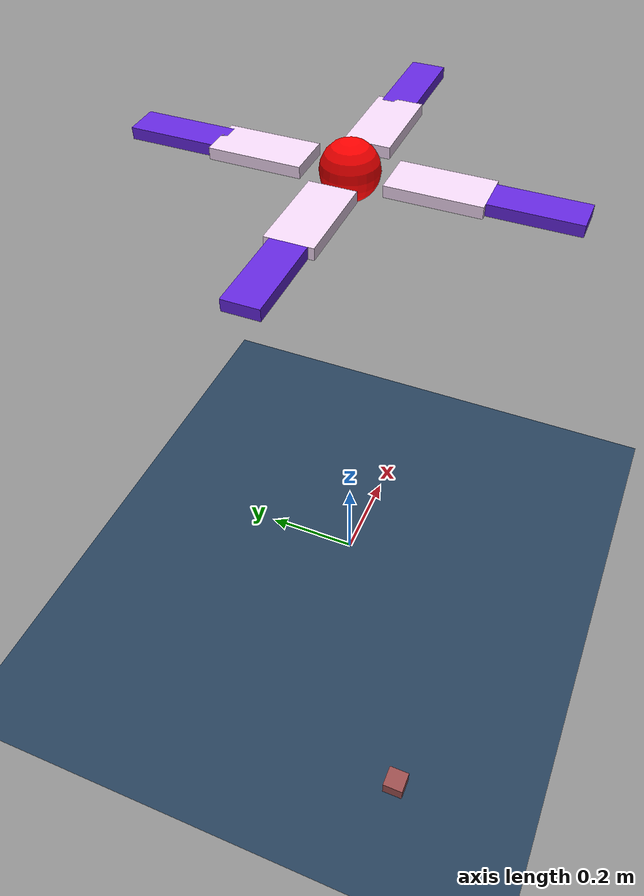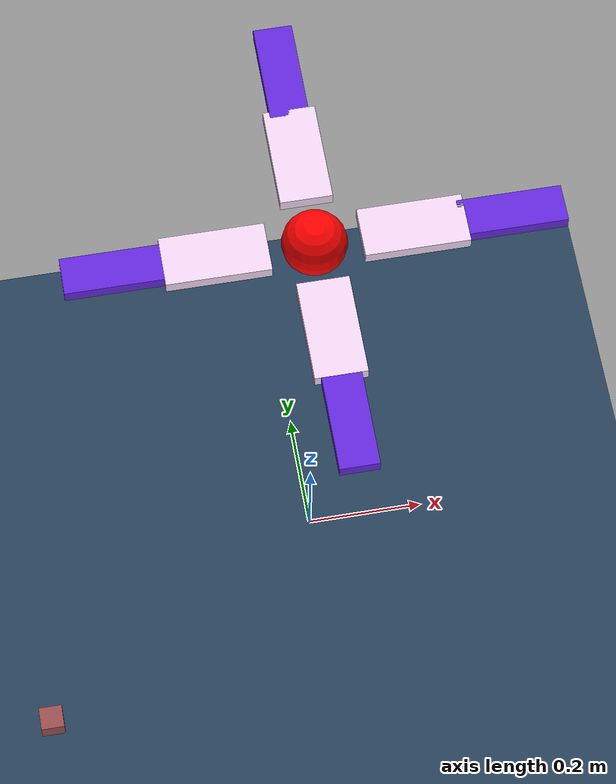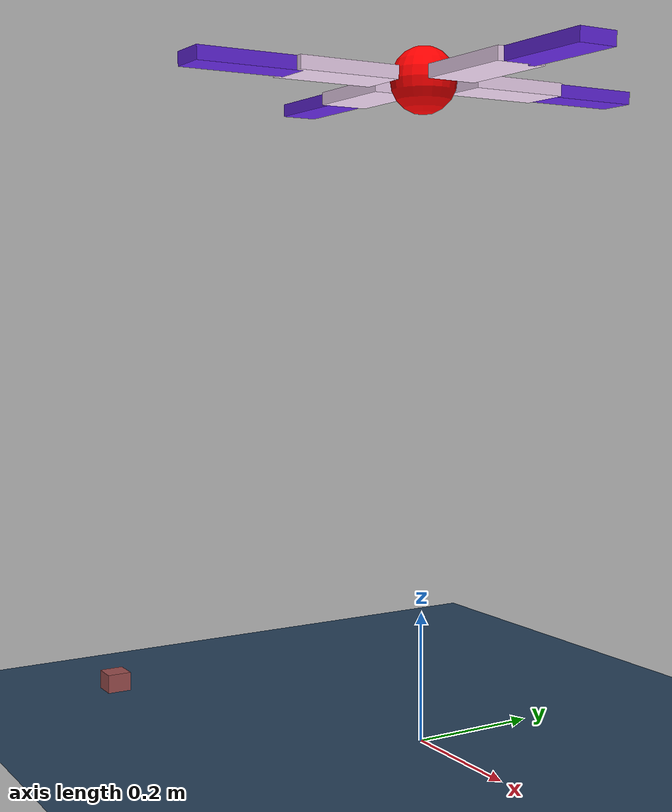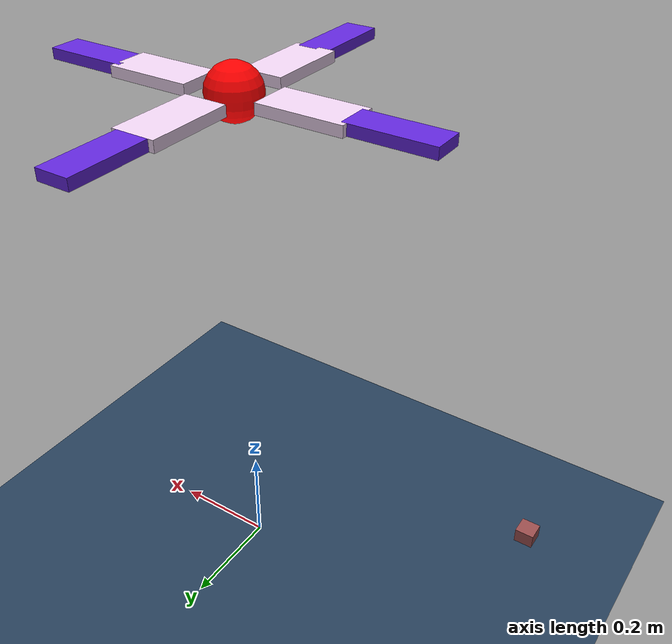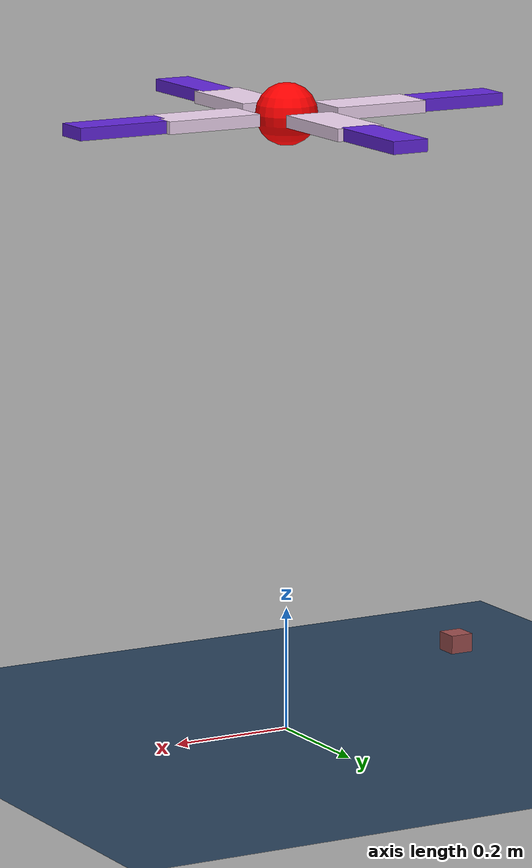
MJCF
<mujoco model="starfish">
    <compiler inertiafromgeom="true" angle="degree"/>
	<include file="./common/visual.xml" />
	<include file="./common/materials.xml" />
	<asset>
		<texture builtin="gradient" height="800" mark="random" markrgb="1 1 1" name="skybox" rgb1=".4 .6 .8" rgb2="0 0 0" type="skybox" width="800" />
	</asset>
	<!--Viscosity:: water:0.000894, air:0.00001983 -->
	<!--Density:: water:1000, air:1.2 -->
	<option gravity="0 0 -0.1" timestep="0.04" viscosity="0.1" density="4000" />
	<default>
		<motor ctrllimited="true" ctrlrange="-1 1" />
		<general ctrllimited="true" />
		<default class="starfish">
			<joint armature=".01" damping=".2" range="-30.5 30.5" solimplimit="0 .99 .01" stiffness=".6" type="hinge" />
			<geom friction=".7" solimp=".95 .99 .003" solref=".015 1" />
		</default>
	</default>
	<worldbody>
		<camera mode="trackcom" target="agent0/root" name="tracking_top" pos="0 -2 2" euler="50.0 0.0 0.0" />
		<!--camera mode="fixed" name="arm_eye" pos="0 -2 2" euler="50.0 0.0 0.0" /-->
		<geom material="grid" name="ground" size="3 3 1" type="plane" />

        <body childclass="starfish" name="agent0/root" pos="0 0 1.0">
          <joint damping="0" limited="false" name="agent0/root/free" type="free"/>
          <geom name="agent0/root" rgba="1 0 0 1" size="0.05" type="sphere"/>
          <body euler="0.0 90.0 90.0" name="agent0/left_arm" pos="0.15 0.0 0.0">
            <joint axis="1 0 0" name="agent0/left_arm_x"/>
            <joint axis="0 1 0" name="agent0/left_arm_y"/>
            <joint axis="0 0 1" name="agent0/left_arm_z"/>
            <geom name="agent0/left_arm" rgba="0.9333333333333333 0.8313725490196079 0.9411764705882353 1.0" size="0.04 0.01 0.08" type="box"/>
            <body euler="0.0 0.0 0.0" name="agent0/left_arm/tip" pos="0.0 0.0 0.15">
              <joint axis="1 0 0" name="agent0/left_arm/tip_x"/>
              <joint axis="0 1 0" name="agent0/left_arm/tip_y"/>
              <joint axis="0 0 1" name="agent0/left_arm/tip_z"/>
              <geom name="agent0/left_arm/tip" rgba="0.3843137254901961 0.14901960784313725 0.8549019607843137 1.0" size="0.03 0.01 0.08" type="box"/>
            </body>
          </body>
          <body euler="0.0 -90.0 90.0" name="agent0/right_arm" pos="-0.15 0.0 0.0">
            <joint axis="1 0 0" name="agent0/right_arm_x"/>
            <joint axis="0 1 0" name="agent0/right_arm_y"/>
            <joint axis="0 0 1" name="agent0/right_arm_z"/>
            <geom name="agent0/right_arm" rgba="0.9333333333333333 0.8313725490196079 0.9411764705882353 1.0" size="0.04 0.01 0.08" type="box"/>
            <body euler="0.0 0.0 0.0" name="agent0/right_arm/tip" pos="0.0 0.0 0.15">
              <joint axis="1 0 0" name="agent0/right_arm/tip_x"/>
              <joint axis="0 1 0" name="agent0/right_arm/tip_y"/>
              <joint axis="0 0 1" name="agent0/right_arm/tip_z"/>
              <geom name="agent0/right_arm/tip" rgba="0.3843137254901961 0.14901960784313725 0.8549019607843137 1.0" size="0.03 0.01 0.08" type="box"/>
            </body>
          </body>
          <body euler="-90.0 0.0 0.0" name="agent0/front_arm" pos="0.0 0.15 0.0">
            <joint axis="1 0 0" name="agent0/front_arm_x"/>
            <joint axis="0 1 0" name="agent0/front_arm_y"/>
            <joint axis="0 0 1" name="agent0/front_arm_z"/>
            <geom name="agent0/front_arm" rgba="0.9333333333333333 0.8313725490196079 0.9411764705882353 1.0" size="0.04 0.01 0.08" type="box"/>
            <body euler="0.0 0.0 0.0" name="agent0/front_arm/tip" pos="0.0 0.0 0.15">
              <joint axis="1 0 0" name="agent0/front_arm/tip_x"/>
              <joint axis="0 1 0" name="agent0/front_arm/tip_y"/>
              <joint axis="0 0 1" name="agent0/front_arm/tip_z"/>
              <geom name="agent0/front_arm/tip" rgba="0.3843137254901961 0.14901960784313725 0.8549019607843137 1.0" size="0.03 0.01 0.08" type="box"/>
              <camera euler="180.0 0.0 0.0" mode="fixed" name="arm_eye" pos="0 0 0.08"/>
            </body>
          </body>
          <body euler="90.0 0.0 0.0" name="agent0/back_arm" pos="0.0 -0.15 0.0">
            <joint axis="1 0 0" name="agent0/back_arm_x"/>
            <joint axis="0 1 0" name="agent0/back_arm_y"/>
            <joint axis="0 0 1" name="agent0/back_arm_z"/>
            <geom name="agent0/back_arm" rgba="0.9333333333333333 0.8313725490196079 0.9411764705882353 1.0" size="0.04 0.01 0.08" type="box"/>
            <body euler="0.0 0.0 0.0" name="agent0/back_arm/tip" pos="0.0 0.0 0.15">
              <joint axis="1 0 0" name="agent0/back_arm/tip_x"/>
              <joint axis="0 1 0" name="agent0/back_arm/tip_y"/>
              <joint axis="0 0 1" name="agent0/back_arm/tip_z"/>
              <geom name="agent0/back_arm/tip" rgba="0.3843137254901961 0.14901960784313725 0.8549019607843137 1.0" size="0.03 0.01 0.08" type="box"/>
            </body>
          </body>
        </body>

    <body name="target" pos="-0.5025618217921284 -0.30252641539177194 0.009889796273572816">
			<geom material="target" name="target" pos="0 0 0" size="0.02 0.02 0.02" type="box" />
		</body>
	</worldbody>
<contact>
  <exclude body1="agent0/root" body2="agent0/left_arm"/>
  <exclude body1="agent0/left_arm" body2="agent0/left_arm/tip"/>
  <exclude body1="agent0/root" body2="agent0/right_arm"/>
  <exclude body1="agent0/right_arm" body2="agent0/right_arm/tip"/>
  <exclude body1="agent0/root" body2="agent0/front_arm"/>
  <exclude body1="agent0/front_arm" body2="agent0/front_arm/tip"/>
  <exclude body1="agent0/root" body2="agent0/back_arm"/>
  <exclude body1="agent0/back_arm" body2="agent0/back_arm/tip"/>
</contact>
<actuator>
  <motor gear="1" joint="agent0/left_arm_x" name="agent0/left_arm_x"/>
  <motor gear="1" joint="agent0/left_arm_y" name="agent0/left_arm_y"/>
  <motor gear="1" joint="agent0/left_arm_z" name="agent0/left_arm_z"/>
  <motor gear="1" joint="agent0/left_arm/tip_x" name="agent0/left_arm/tip_x"/>
  <motor gear="1" joint="agent0/left_arm/tip_y" name="agent0/left_arm/tip_y"/>
  <motor gear="1" joint="agent0/left_arm/tip_z" name="agent0/left_arm/tip_z"/>
  <motor gear="1" joint="agent0/right_arm_x" name="agent0/right_arm_x"/>
  <motor gear="1" joint="agent0/right_arm_y" name="agent0/right_arm_y"/>
  <motor gear="1" joint="agent0/right_arm_z" name="agent0/right_arm_z"/>
  <motor gear="1" joint="agent0/right_arm/tip_x" name="agent0/right_arm/tip_x"/>
  <motor gear="1" joint="agent0/right_arm/tip_y" name="agent0/right_arm/tip_y"/>
  <motor gear="1" joint="agent0/right_arm/tip_z" name="agent0/right_arm/tip_z"/>
  <motor gear="1" joint="agent0/front_arm_x" name="agent0/front_arm_x"/>
  <motor gear="1" joint="agent0/front_arm_y" name="agent0/front_arm_y"/>
  <motor gear="1" joint="agent0/front_arm_z" name="agent0/front_arm_z"/>
  <motor gear="1" joint="agent0/front_arm/tip_x" name="agent0/front_arm/tip_x"/>
  <motor gear="1" joint="agent0/front_arm/tip_y" name="agent0/front_arm/tip_y"/>
  <motor gear="1" joint="agent0/front_arm/tip_z" name="agent0/front_arm/tip_z"/>
  <motor gear="1" joint="agent0/back_arm_x" name="agent0/back_arm_x"/>
  <motor gear="1" joint="agent0/back_arm_y" name="agent0/back_arm_y"/>
  <motor gear="1" joint="agent0/back_arm_z" name="agent0/back_arm_z"/>
  <motor gear="1" joint="agent0/back_arm/tip_x" name="agent0/back_arm/tip_x"/>
  <motor gear="1" joint="agent0/back_arm/tip_y" name="agent0/back_arm/tip_y"/>
  <motor gear="1" joint="agent0/back_arm/tip_z" name="agent0/back_arm/tip_z"/>
</actuator>
</mujoco>

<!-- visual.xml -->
<mujoco>
    <visual>
        <headlight ambient=".4 .4 .4" diffuse=".8 .8 .8" specular="0.1 0.1 0.1" />
        <map znear=".01" />
        <quality shadowsize="2048" />
    </visual>
</mujoco>

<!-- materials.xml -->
<!--
Common textures, colors and materials to be used throughout this suite. Some
materials such as xxx_highlight are activated on occurence of certain events,
for example receiving a positive reward.
-->
<mujoco>
  <asset>
    <texture name="grid" type="2d" builtin="checker" rgb1=".1 .2 .3" rgb2=".2 .3 .4" width="300" height="300" mark="edge" markrgb=".2 .3 .4"/>
    <texture name="elon" type="2d" file="elonne.png"/>
    <texture name="corn" type="2d" file="Corn12.png" width="500" height="375"/>
    <material name="corn" texture="corn" texrepeat="1 1" texuniform="true"/>
    <material name="elon" texture="elon" texrepeat="1 1" texuniform="true"/>
    <material name="grid" texture="grid" texrepeat="1 1" texuniform="true" reflectance=".2"/>
    <material name="self" rgba=".7 .5 .3 1"/>
    <material name="self_default" rgba=".7 .5 .3 1"/>
    <material name="self_highlight" rgba="0 .5 .3 1"/>
    <material name="effector" rgba=".7 .4 .2 1"/>
    <material name="effector_default" rgba=".7 .4 .2 1"/>
    <material name="effector_highlight" rgba="0 .5 .3 1"/>
    <material name="decoration" rgba=".3 .5 .7 1"/>
    <material name="eye" rgba="0 .2 1 1"/>
    <material name="target" rgba=".6 .3 .3 1"/>
    <material name="target_default" rgba=".6 .3 .3 1"/>
    <material name="target_highlight" rgba=".6 .3 .3 .4"/>
  </asset>
</mujoco>
